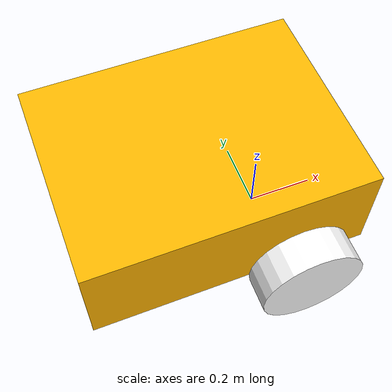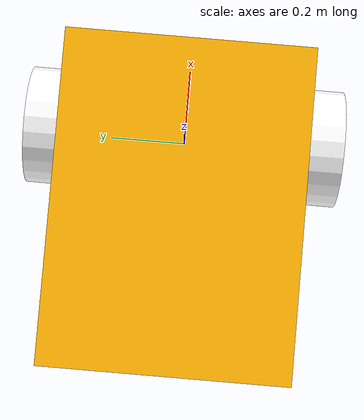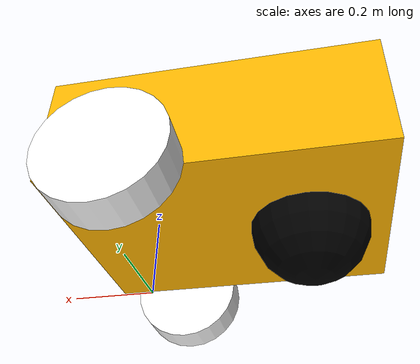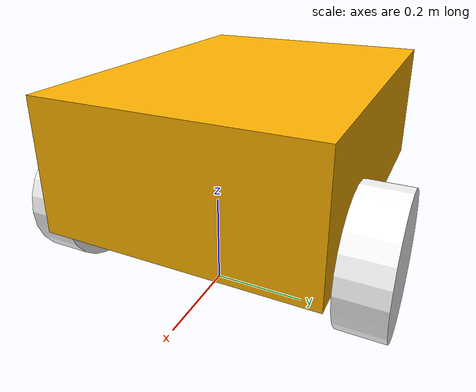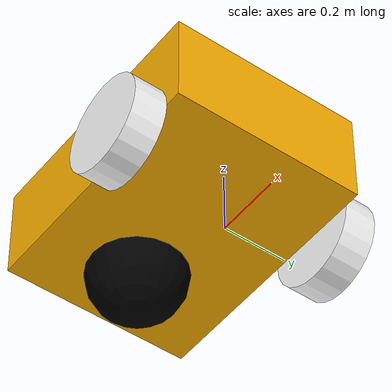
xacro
<?xml version="1.0"?>
<robot xmlns:xacro="http://www.ros.org/wiki/xacro" name="rover">

    <xacro:include filename="$(find mobile_robot_simulation)/urdf/wheel_parameters.urdf.xacro"/>

    <xacro:property name="base_const"   value="0.0833333333"/>
    <xacro:property name="base_mass"    value="1.0"/>
    <xacro:property name="base_width"   value="0.8"/>
    <xacro:property name="base_height"  value="0.6"/>
    <xacro:property name="base_depth"   value="0.3"/>

    <link name="base_link">
        <origin xyz="0.0 0.0 0.0" rpy="0.0 0.0 3.14159265"/>
    </link>

    <!-- ROBOT BASE -->
    <link name="chassis_link">
        <inertial>
            <origin xyz="0.0 0.0 0.0" rpy="0.0 0.0 0.0"/>
            <mass value="${base_mass}"/>
            <inertia ixx="${base_const * base_mass * ((base_height * base_height) + (base_depth * base_depth))}" ixy="0.0" ixz="0.0"
                                 iyy="${base_const * base_mass * ((base_width * base_width) + (base_depth * base_depth))}" iyz="0.0"
                                         izz="${base_const * base_mass * ((base_width * base_width) + (base_height * base_height))}"/>
        </inertial>
        <visual name="">
            <origin xyz="0.0 0.0 0.0" rpy="0.0 0.0 0.0"/>
            <geometry>
                <box size="${base_width} ${base_height} ${base_depth}"/>
            </geometry>
            <material name="orange">
                <color rgba="1.0 0.7 0.0 1.0"/>
                <texture filename=""/>
            </material>
        </visual>
        <collision>
            <origin xyz="0.0 0.0 0.0" rpy="0.0 0.0 0.0"/>
            <geometry>
                <box size="${base_width} ${base_height} ${base_depth}"/>
            </geometry>
        </collision>
    </link>
    <joint name="chassis_joint" type="fixed">
        <origin xyz="-0.2 0.0 0.30" rpy="0.0 0.0 0.0"/>
        <parent link="base_link"/>
        <child link="chassis_link"/>
        <axis xyz="0.0 0.0 0.0"/>
    </joint>
    <gazebo reference="chassis_link">
        <material>
            Gazebo/Orange
        </material>
    </gazebo>

    <!-- Back Wheel -->
    <link name="back_wheel_link">
        <visual name="">
            <origin xyz="0.0 0.0 0.0" rpy="0.0 0.0 0.0"/>
            <geometry>
                <sphere radius="0.15"/>
            </geometry>
            <material name="black">
                <color rgba="0.0 0.0 0.0 1.0"/>
                <texture filename=""/>
            </material>
        </visual>
        <collision>
            <origin xyz="0.0 0.0 0.0" rpy="0.0 0.0 0.0"/>
            <geometry>
                <sphere radius="0.15"/>
            </geometry>
        </collision>
    </link>
    <joint name="back_wheel_joint" type="fixed">
        <origin xyz="-0.2 0.0 -0.15" rpy="0.0 0.0 0.0"/>
        <parent link="chassis_link"/>
        <child link="back_wheel_link"/>
    </joint>
    <gazebo reference="back_wheel_link">
        <mu1 value="0.0"/>
        <mu2 value="0.0"/>
        <material>Gazebo/Black</material>
    </gazebo>

    <!-- Right Wheel -->
    <xacro:wheel name="right" x="0.2" y="-0.35" z="-0.15"/>
    <!-- Left Wheel -->
    <xacro:wheel name="left" x="0.2" y="0.35" z="-0.15"/>

    <gazebo>
        <plugin name="gazebo_ros_control" filename="libgazebo_ros_control.so"/>
    </gazebo>

</robot>

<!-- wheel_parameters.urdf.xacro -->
<robot xmlns:xacro="http://www.ros.org/wiki/xacro" name="wheel_parameters">

    <xacro:property name="wheel_const"   value="0.0833333333"/>
    <xacro:property name="wheel_const2"  value="0.5"/>
    <xacro:property name="wheel_mass"    value="0.25"/>
    <xacro:property name="wheel_radius"  value="0.15"/>
    <xacro:property name="wheel_height"  value="0.1"/>

    <xacro:macro name="wheel" params="name x y z">
        <link name="${name}_wheel_link">
            <inertial>
                <origin xyz="0.0 0.0 0.0" rpy="0.0 0.0 0.0"/>
                <mass value="${wheel_mass}"/>
                <inertia ixx="${(wheel_const * wheel_mass) * ( 3 * (wheel_radius * wheel_radius) + (wheel_height * wheel_height))}" ixy="0.0" ixz="0.0"
                                   iyy="${(wheel_const * wheel_mass) * ( 3 * (wheel_radius * wheel_radius) + (wheel_height * wheel_height))}" iyz="0.0"
                                                                                     izz="${wheel_const2 * wheel_mass * (wheel_radius * wheel_radius)}"/>
            </inertial>
            <visual name="">
                <origin xyz="0.0 0.0 0.0" rpy="0.0 0.0 0.0"/>
                <geometry>
                    <cylinder radius="${wheel_radius}" length="${wheel_height}"/>
                </geometry>
                <material name="white">
                    <color rgba="1.0 1.0 1.0 1.0"/>
                    <texture filename=""/>
                </material>
            </visual>
            <collision>
                <origin xyz="0.0 0.0 0.0" rpy="0.0 0.0 0.0"/>
                <geometry>
                    <cylinder radius="0.15" length="0.1"/>
                </geometry>
            </collision>
        </link>

        <joint name="${name}_wheel_joint" type="continuous">
            <origin xyz="${x} ${y} ${z}" rpy="1.570796 0.0 0.0"/>
            <parent link="chassis_link"/>
            <child link="${name}_wheel_link"/>
            <axis xyz="0.0 0.0 -1.0"/>
        </joint>

        <transmission name="${name}_wheel_trans">
            <type>transmission_interface/SimpleTransmission</type>
            <actuator name="${name}_wheel_motor">
              <mechanicalReduction>1</mechanicalReduction>
            </actuator>
            <joint name="${name}_wheel_joint">
              <hardwareInterface>hardware_interface/VelocityJointInterface</hardwareInterface>
            </joint>
        </transmission>

        <gazebo reference="${name}_wheel_link">
            <mu1 value="1.0"/>
            <mu2 value="2.0"/>
            <kp value="10000000.0" />
            <kd value="1.0" />
            <material>Gazebo/Grey</material>
        </gazebo>
    </xacro:macro>

</robot>
